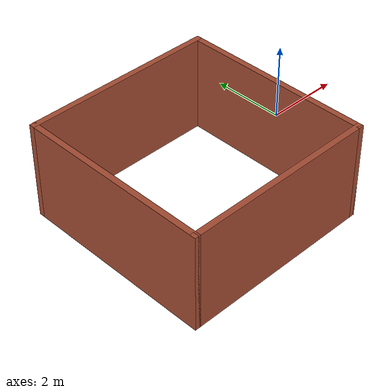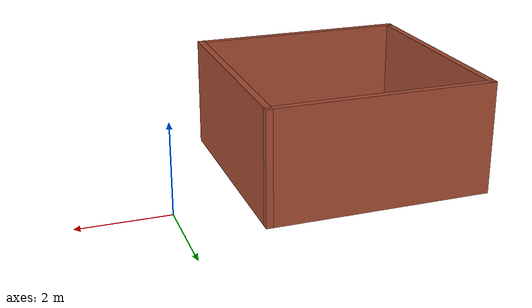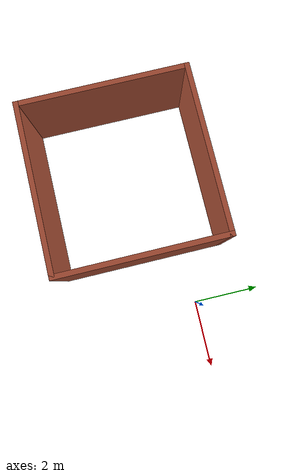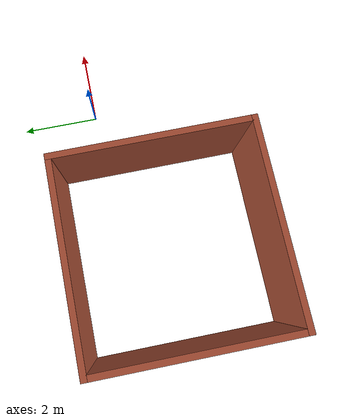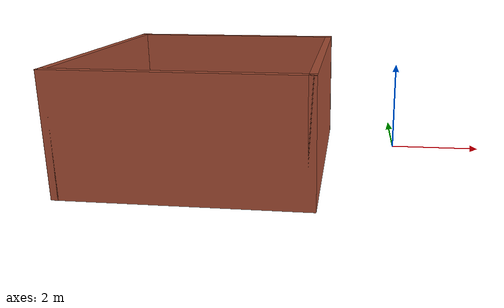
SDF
<?xml version='1.0'?>
<sdf version='1.7'>
  <model name='map1'>
    <pose>-3.28901 -1.26563 0 0 -0 0</pose>
    <link name='Wall_5'>
      <collision name='Wall_5_Collision'>
        <geometry>
          <box>
            <size>5 0.15 2.5</size>
          </box>
        </geometry>
        <pose>0 0 1.25 0 -0 0</pose>
      </collision>
      <visual name='Wall_5_Visual'>
        <pose>0 0 1.25 0 -0 0</pose>
        <geometry>
          <box>
            <size>5 0.15 2.5</size>
          </box>
        </geometry>
        <material>
          <script>
            <uri>file://media/materials/scripts/gazebo.material</uri>
            <name>Gazebo/Bricks</name>
          </script>
          <ambient>1 1 1 1</ambient>
        </material>
        <meta>
          <layer>0</layer>
        </meta>
      </visual>
      <pose>-0.789011 -2.425 0 0 -0 0</pose>
    </link>
    <link name='Wall_6'>
      <collision name='Wall_6_Collision'>
        <geometry>
          <box>
            <size>5 0.15 2.5</size>
          </box>
        </geometry>
        <pose>0 0 1.25 0 -0 0</pose>
      </collision>
      <visual name='Wall_6_Visual'>
        <pose>0 0 1.25 0 -0 0</pose>
        <geometry>
          <box>
            <size>5 0.15 2.5</size>
          </box>
        </geometry>
        <material>
          <script>
            <uri>file://media/materials/scripts/gazebo.material</uri>
            <name>Gazebo/Bricks</name>
          </script>
          <ambient>1 1 1 1</ambient>
        </material>
        <meta>
          <layer>0</layer>
        </meta>
      </visual>
      <pose>1.63599 0 0 0 -0 1.5708</pose>
    </link>
    <link name='Wall_7'>
      <collision name='Wall_7_Collision'>
        <geometry>
          <box>
            <size>5 0.15 2.5</size>
          </box>
        </geometry>
        <pose>0 0 1.25 0 -0 0</pose>
      </collision>
      <visual name='Wall_7_Visual'>
        <pose>0 0 1.25 0 -0 0</pose>
        <geometry>
          <box>
            <size>5 0.15 2.5</size>
          </box>
        </geometry>
        <material>
          <script>
            <uri>file://media/materials/scripts/gazebo.material</uri>
            <name>Gazebo/Bricks</name>
          </script>
          <ambient>1 1 1 1</ambient>
        </material>
        <meta>
          <layer>0</layer>
        </meta>
      </visual>
      <pose>-0.789011 2.425 0 0 -0 3.14159</pose>
    </link>
    <link name='Wall_8'>
      <collision name='Wall_8_Collision'>
        <geometry>
          <box>
            <size>5 0.15 2.5</size>
          </box>
        </geometry>
        <pose>0 0 1.25 0 -0 0</pose>
      </collision>
      <visual name='Wall_8_Visual'>
        <pose>0 0 1.25 0 -0 0</pose>
        <geometry>
          <box>
            <size>5 0.15 2.5</size>
          </box>
        </geometry>
        <material>
          <script>
            <uri>file://media/materials/scripts/gazebo.material</uri>
            <name>Gazebo/Bricks</name>
          </script>
          <ambient>1 1 1 1</ambient>
        </material>
        <meta>
          <layer>0</layer>
        </meta>
      </visual>
      <pose>-3.21401 0 0 0 -0 -1.5708</pose>
    </link>
    <static>1</static>
  </model>
</sdf>
